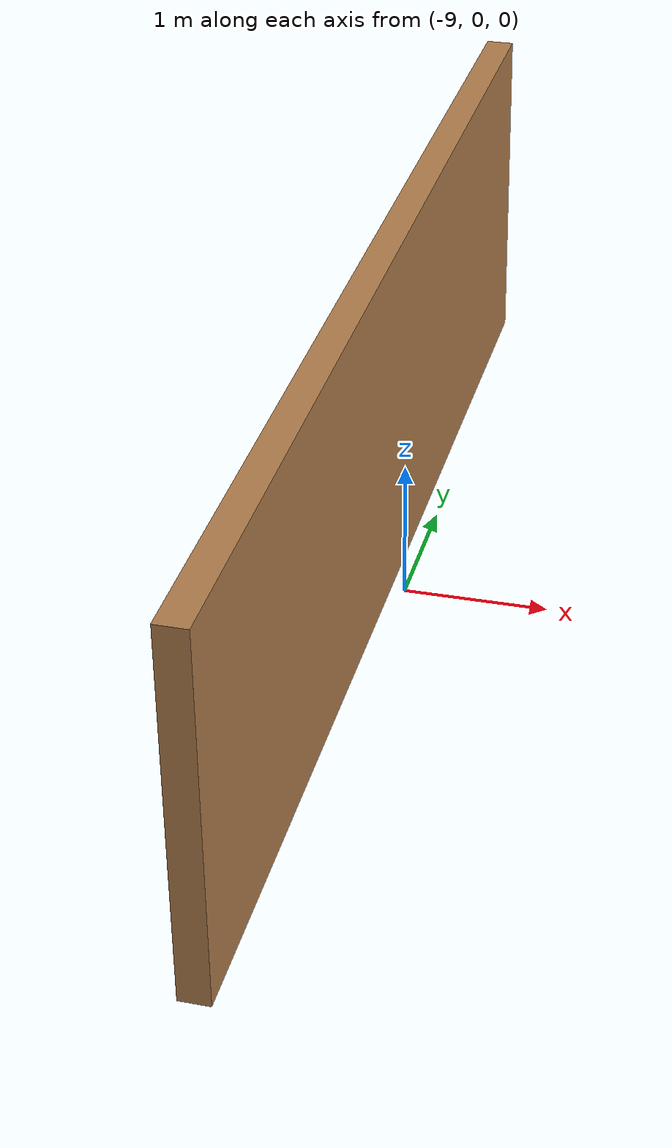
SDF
<?xml version='1.0'?>
<sdf version='1.7'>
  <model name='building'>
    <pose>-4.65 0 0 0 -0 0</pose>
    <link name='Wall_0'>
      <collision name='Wall_0_Collision'>
        <geometry>
          <box>
            <size>8.2 0.2 2.5</size>
          </box>
        </geometry>
        <pose>0 0 1.25 0 -0 0</pose>
      </collision>
      <visual name='Wall_0_Visual'>
        <pose>0 0 1.25 0 -0 0</pose>
        <geometry>
          <box>
            <size>8.2 0.2 2.5</size>
          </box>
        </geometry>
        <material>
          <script>
            <uri>file://media/materials/scripts/gazebo.material</uri>
            <name>Gazebo/Wood</name>
          </script>
          <ambient>1 1 1 1</ambient>
        </material>
        <meta>
          <layer>0</layer>
        </meta>
      </visual>
      <pose>-4.55 0 0 0 -0 1.5708</pose>
    </link>
    <static>1</static>
  </model>
</sdf>
